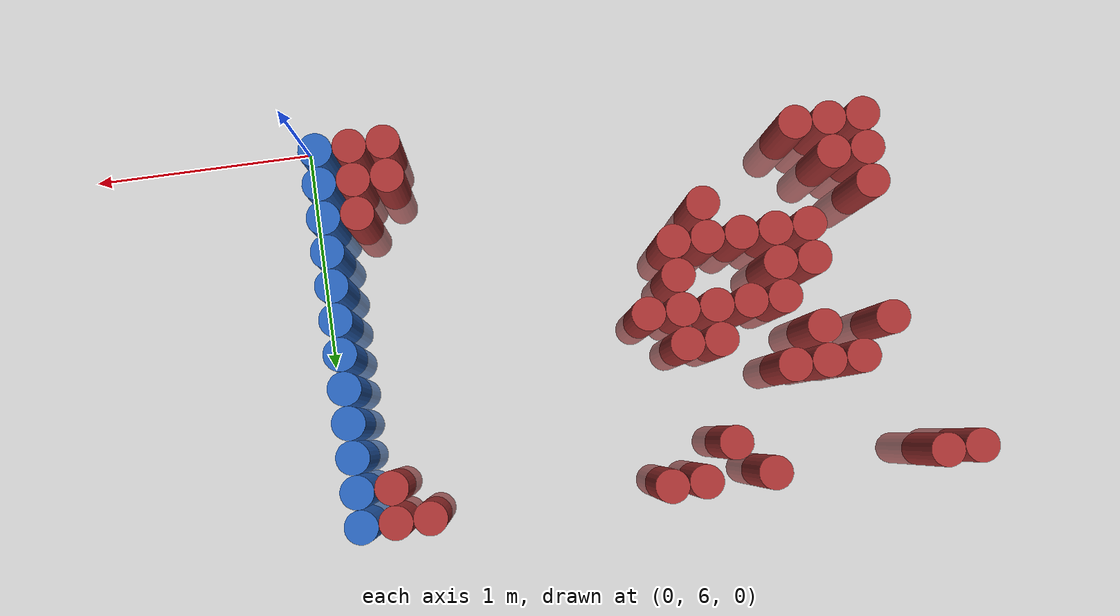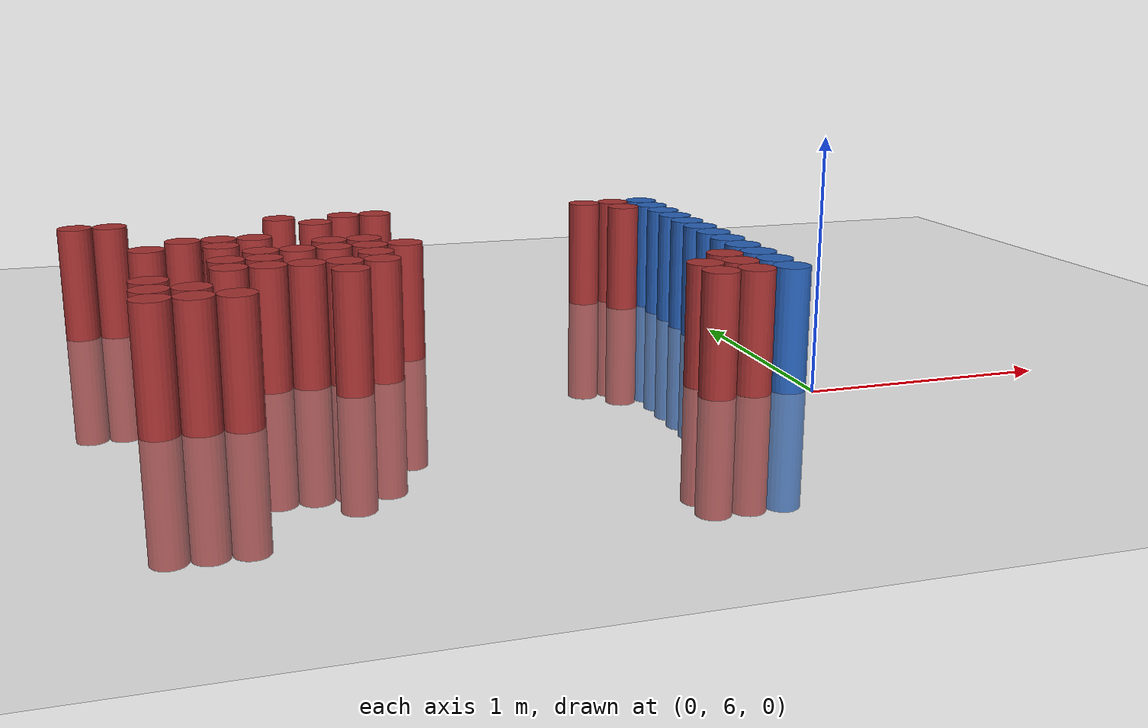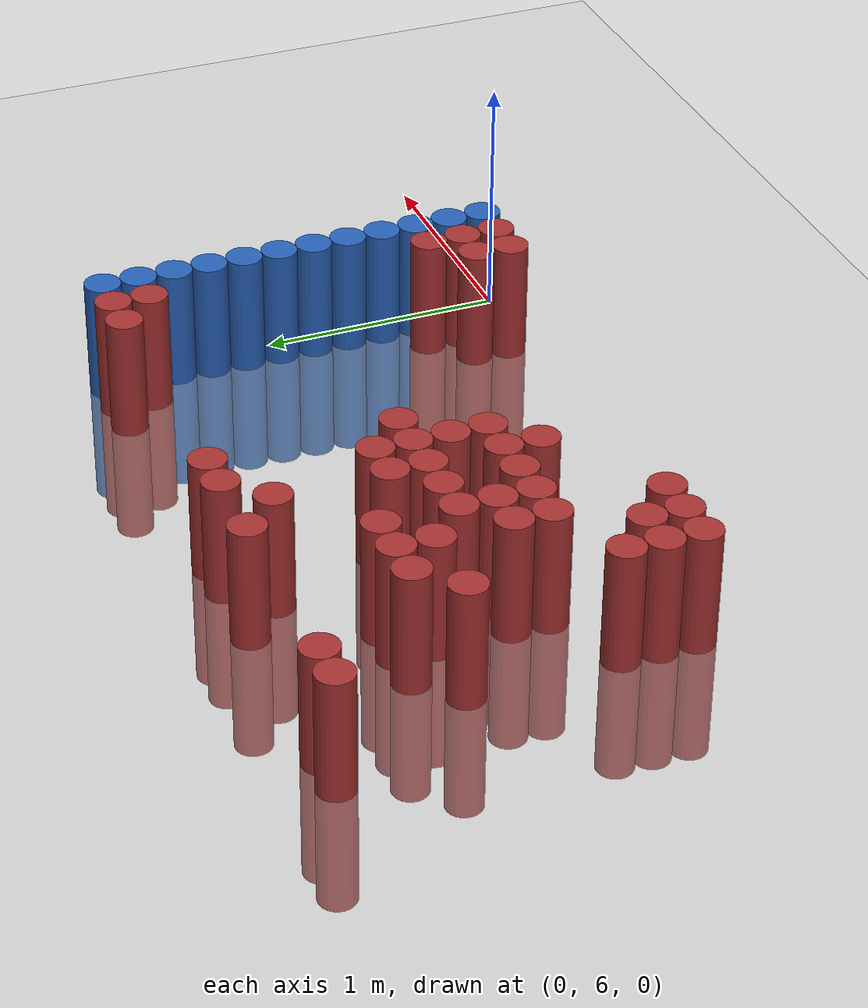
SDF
<sdf version="1.6">
 <world name="default">
  <model name="ground_plane">
   <static>1</static>
   <link name="link">
    <collision name="collision">
     <geometry><plane><normal>0 0 1</normal><size>100 100</size></plane></geometry>
     <surface><friction><ode><mu>100</mu><mu2>50</mu2></ode></friction></surface>
    </collision>
    <visual name="visual">
     <cast_shadows>0</cast_shadows>
     <geometry><plane><normal>0 0 1</normal><size>100 100</size></plane></geometry>
     <material>
      <script><uri>file://media/materials/scripts/gazebo.material</uri><name>Gazebo/Grey</name></script>
     </material>
    </visual>
   </link>
  </model>
  <model name="unit_cylinder_234">
   <static>1</static>
   <pose>-2.775000 7.725000 0.000000 0.000000 0.000000 0.000000</pose>
   <link name="link">
    <inertial>
     <mass>1</mass>
     <inertia><ixx>0.145833</ixx><ixy>0</ixy><ixz>0</ixz><iyy>0.145833</iyy><iyz>0</iyz><izz>0.125</izz></inertia>
    </inertial>
    <collision name="collision">
     <geometry><cylinder><radius>0.075000</radius><length>1</length></cylinder></geometry>
    </collision>
    <visual name="visual">
     <geometry><cylinder><radius>0.075000</radius><length>1</length></cylinder></geometry>
     <material>
      <ambient>0.648000 0.192000 0.192000 1</ambient>
      <diffuse>0.648000 0.192000 0.192000 1</diffuse>
     </material>
     <material>
      <script><name>Gazebo/Grey</name><uri>file://media/materials/scripts/gazebo.material</uri></script>
     </material>
    </visual>
   </link>
  </model>
  <model name="unit_cylinder_238">
   <static>1</static>
   <pose>-2.625000 7.725000 0.000000 0.000000 0.000000 0.000000</pose>
   <link name="link">
    <inertial>
     <mass>1</mass>
     <inertia><ixx>0.145833</ixx><ixy>0</ixy><ixz>0</ixz><iyy>0.145833</iyy><iyz>0</iyz><izz>0.125</izz></inertia>
    </inertial>
    <collision name="collision">
     <geometry><cylinder><radius>0.075000</radius><length>1</length></cylinder></geometry>
    </collision>
    <visual name="visual">
     <geometry><cylinder><radius>0.075000</radius><length>1</length></cylinder></geometry>
     <material>
      <ambient>0.648000 0.192000 0.192000 1</ambient>
      <diffuse>0.648000 0.192000 0.192000 1</diffuse>
     </material>
     <material>
      <script><name>Gazebo/Grey</name><uri>file://media/materials/scripts/gazebo.material</uri></script>
     </material>
    </visual>
   </link>
  </model>
  <model name="unit_cylinder_244">
   <static>1</static>
   <pose>-2.475000 6.225000 0.000000 0.000000 0.000000 0.000000</pose>
   <link name="link">
    <inertial>
     <mass>1</mass>
     <inertia><ixx>0.145833</ixx><ixy>0</ixy><ixz>0</ixz><iyy>0.145833</iyy><iyz>0</iyz><izz>0.125</izz></inertia>
    </inertial>
    <collision name="collision">
     <geometry><cylinder><radius>0.075000</radius><length>1</length></cylinder></geometry>
    </collision>
    <visual name="visual">
     <geometry><cylinder><radius>0.075000</radius><length>1</length></cylinder></geometry>
     <material>
      <ambient>0.648000 0.192000 0.192000 1</ambient>
      <diffuse>0.648000 0.192000 0.192000 1</diffuse>
     </material>
     <material>
      <script><name>Gazebo/Grey</name><uri>file://media/materials/scripts/gazebo.material</uri></script>
     </material>
    </visual>
   </link>
  </model>
  <model name="unit_cylinder_245">
   <static>1</static>
   <pose>-2.475000 6.375000 0.000000 0.000000 0.000000 0.000000</pose>
   <link name="link">
    <inertial>
     <mass>1</mass>
     <inertia><ixx>0.145833</ixx><ixy>0</ixy><ixz>0</ixz><iyy>0.145833</iyy><iyz>0</iyz><izz>0.125</izz></inertia>
    </inertial>
    <collision name="collision">
     <geometry><cylinder><radius>0.075000</radius><length>1</length></cylinder></geometry>
    </collision>
    <visual name="visual">
     <geometry><cylinder><radius>0.075000</radius><length>1</length></cylinder></geometry>
     <material>
      <ambient>0.648000 0.192000 0.192000 1</ambient>
      <diffuse>0.648000 0.192000 0.192000 1</diffuse>
     </material>
     <material>
      <script><name>Gazebo/Grey</name><uri>file://media/materials/scripts/gazebo.material</uri></script>
     </material>
    </visual>
   </link>
  </model>
  <model name="unit_cylinder_246">
   <static>1</static>
   <pose>-2.475000 6.525000 0.000000 0.000000 0.000000 0.000000</pose>
   <link name="link">
    <inertial>
     <mass>1</mass>
     <inertia><ixx>0.145833</ixx><ixy>0</ixy><ixz>0</ixz><iyy>0.145833</iyy><iyz>0</iyz><izz>0.125</izz></inertia>
    </inertial>
    <collision name="collision">
     <geometry><cylinder><radius>0.075000</radius><length>1</length></cylinder></geometry>
    </collision>
    <visual name="visual">
     <geometry><cylinder><radius>0.075000</radius><length>1</length></cylinder></geometry>
     <material>
      <ambient>0.648000 0.192000 0.192000 1</ambient>
      <diffuse>0.648000 0.192000 0.192000 1</diffuse>
     </material>
     <material>
      <script><name>Gazebo/Grey</name><uri>file://media/materials/scripts/gazebo.material</uri></script>
     </material>
    </visual>
   </link>
  </model>
  <model name="unit_cylinder_247">
   <static>1</static>
   <pose>-2.475000 7.125000 0.000000 0.000000 0.000000 0.000000</pose>
   <link name="link">
    <inertial>
     <mass>1</mass>
     <inertia><ixx>0.145833</ixx><ixy>0</ixy><ixz>0</ixz><iyy>0.145833</iyy><iyz>0</iyz><izz>0.125</izz></inertia>
    </inertial>
    <collision name="collision">
     <geometry><cylinder><radius>0.075000</radius><length>1</length></cylinder></geometry>
    </collision>
    <visual name="visual">
     <geometry><cylinder><radius>0.075000</radius><length>1</length></cylinder></geometry>
     <material>
      <ambient>0.648000 0.192000 0.192000 1</ambient>
      <diffuse>0.648000 0.192000 0.192000 1</diffuse>
     </material>
     <material>
      <script><name>Gazebo/Grey</name><uri>file://media/materials/scripts/gazebo.material</uri></script>
     </material>
    </visual>
   </link>
  </model>
  <model name="unit_cylinder_255">
   <static>1</static>
   <pose>-2.325000 6.225000 0.000000 0.000000 0.000000 0.000000</pose>
   <link name="link">
    <inertial>
     <mass>1</mass>
     <inertia><ixx>0.145833</ixx><ixy>0</ixy><ixz>0</ixz><iyy>0.145833</iyy><iyz>0</iyz><izz>0.125</izz></inertia>
    </inertial>
    <collision name="collision">
     <geometry><cylinder><radius>0.075000</radius><length>1</length></cylinder></geometry>
    </collision>
    <visual name="visual">
     <geometry><cylinder><radius>0.075000</radius><length>1</length></cylinder></geometry>
     <material>
      <ambient>0.648000 0.192000 0.192000 1</ambient>
      <diffuse>0.648000 0.192000 0.192000 1</diffuse>
     </material>
     <material>
      <script><name>Gazebo/Grey</name><uri>file://media/materials/scripts/gazebo.material</uri></script>
     </material>
    </visual>
   </link>
  </model>
  <model name="unit_cylinder_256">
   <static>1</static>
   <pose>-2.325000 6.375000 0.000000 0.000000 0.000000 0.000000</pose>
   <link name="link">
    <inertial>
     <mass>1</mass>
     <inertia><ixx>0.145833</ixx><ixy>0</ixy><ixz>0</ixz><iyy>0.145833</iyy><iyz>0</iyz><izz>0.125</izz></inertia>
    </inertial>
    <collision name="collision">
     <geometry><cylinder><radius>0.075000</radius><length>1</length></cylinder></geometry>
    </collision>
    <visual name="visual">
     <geometry><cylinder><radius>0.075000</radius><length>1</length></cylinder></geometry>
     <material>
      <ambient>0.648000 0.192000 0.192000 1</ambient>
      <diffuse>0.648000 0.192000 0.192000 1</diffuse>
     </material>
     <material>
      <script><name>Gazebo/Grey</name><uri>file://media/materials/scripts/gazebo.material</uri></script>
     </material>
    </visual>
   </link>
  </model>
  <model name="unit_cylinder_257">
   <static>1</static>
   <pose>-2.325000 7.275000 0.000000 0.000000 0.000000 0.000000</pose>
   <link name="link">
    <inertial>
     <mass>1</mass>
     <inertia><ixx>0.145833</ixx><ixy>0</ixy><ixz>0</ixz><iyy>0.145833</iyy><iyz>0</iyz><izz>0.125</izz></inertia>
    </inertial>
    <collision name="collision">
     <geometry><cylinder><radius>0.075000</radius><length>1</length></cylinder></geometry>
    </collision>
    <visual name="visual">
     <geometry><cylinder><radius>0.075000</radius><length>1</length></cylinder></geometry>
     <material>
      <ambient>0.648000 0.192000 0.192000 1</ambient>
      <diffuse>0.648000 0.192000 0.192000 1</diffuse>
     </material>
     <material>
      <script><name>Gazebo/Grey</name><uri>file://media/materials/scripts/gazebo.material</uri></script>
     </material>
    </visual>
   </link>
  </model>
  <model name="unit_cylinder_267">
   <static>1</static>
   <pose>-2.175000 6.225000 0.000000 0.000000 0.000000 0.000000</pose>
   <link name="link">
    <inertial>
     <mass>1</mass>
     <inertia><ixx>0.145833</ixx><ixy>0</ixy><ixz>0</ixz><iyy>0.145833</iyy><iyz>0</iyz><izz>0.125</izz></inertia>
    </inertial>
    <collision name="collision">
     <geometry><cylinder><radius>0.075000</radius><length>1</length></cylinder></geometry>
    </collision>
    <visual name="visual">
     <geometry><cylinder><radius>0.075000</radius><length>1</length></cylinder></geometry>
     <material>
      <ambient>0.648000 0.192000 0.192000 1</ambient>
      <diffuse>0.648000 0.192000 0.192000 1</diffuse>
     </material>
     <material>
      <script><name>Gazebo/Grey</name><uri>file://media/materials/scripts/gazebo.material</uri></script>
     </material>
    </visual>
   </link>
  </model>
  <model name="unit_cylinder_268">
   <static>1</static>
   <pose>-2.175000 6.675000 0.000000 0.000000 0.000000 0.000000</pose>
   <link name="link">
    <inertial>
     <mass>1</mass>
     <inertia><ixx>0.145833</ixx><ixy>0</ixy><ixz>0</ixz><iyy>0.145833</iyy><iyz>0</iyz><izz>0.125</izz></inertia>
    </inertial>
    <collision name="collision">
     <geometry><cylinder><radius>0.075000</radius><length>1</length></cylinder></geometry>
    </collision>
    <visual name="visual">
     <geometry><cylinder><radius>0.075000</radius><length>1</length></cylinder></geometry>
     <material>
      <ambient>0.648000 0.192000 0.192000 1</ambient>
      <diffuse>0.648000 0.192000 0.192000 1</diffuse>
     </material>
     <material>
      <script><name>Gazebo/Grey</name><uri>file://media/materials/scripts/gazebo.material</uri></script>
     </material>
    </visual>
   </link>
  </model>
  <model name="unit_cylinder_269">
   <static>1</static>
   <pose>-2.175000 6.825000 0.000000 0.000000 0.000000 0.000000</pose>
   <link name="link">
    <inertial>
     <mass>1</mass>
     <inertia><ixx>0.145833</ixx><ixy>0</ixy><ixz>0</ixz><iyy>0.145833</iyy><iyz>0</iyz><izz>0.125</izz></inertia>
    </inertial>
    <collision name="collision">
     <geometry><cylinder><radius>0.075000</radius><length>1</length></cylinder></geometry>
    </collision>
    <visual name="visual">
     <geometry><cylinder><radius>0.075000</radius><length>1</length></cylinder></geometry>
     <material>
      <ambient>0.648000 0.192000 0.192000 1</ambient>
      <diffuse>0.648000 0.192000 0.192000 1</diffuse>
     </material>
     <material>
      <script><name>Gazebo/Grey</name><uri>file://media/materials/scripts/gazebo.material</uri></script>
     </material>
    </visual>
   </link>
  </model>
  <model name="unit_cylinder_270">
   <static>1</static>
   <pose>-2.175000 7.125000 0.000000 0.000000 0.000000 0.000000</pose>
   <link name="link">
    <inertial>
     <mass>1</mass>
     <inertia><ixx>0.145833</ixx><ixy>0</ixy><ixz>0</ixz><iyy>0.145833</iyy><iyz>0</iyz><izz>0.125</izz></inertia>
    </inertial>
    <collision name="collision">
     <geometry><cylinder><radius>0.075000</radius><length>1</length></cylinder></geometry>
    </collision>
    <visual name="visual">
     <geometry><cylinder><radius>0.075000</radius><length>1</length></cylinder></geometry>
     <material>
      <ambient>0.648000 0.192000 0.192000 1</ambient>
      <diffuse>0.648000 0.192000 0.192000 1</diffuse>
     </material>
     <material>
      <script><name>Gazebo/Grey</name><uri>file://media/materials/scripts/gazebo.material</uri></script>
     </material>
    </visual>
   </link>
  </model>
  <model name="unit_cylinder_271">
   <static>1</static>
   <pose>-2.175000 7.275000 0.000000 0.000000 0.000000 0.000000</pose>
   <link name="link">
    <inertial>
     <mass>1</mass>
     <inertia><ixx>0.145833</ixx><ixy>0</ixy><ixz>0</ixz><iyy>0.145833</iyy><iyz>0</iyz><izz>0.125</izz></inertia>
    </inertial>
    <collision name="collision">
     <geometry><cylinder><radius>0.075000</radius><length>1</length></cylinder></geometry>
    </collision>
    <visual name="visual">
     <geometry><cylinder><radius>0.075000</radius><length>1</length></cylinder></geometry>
     <material>
      <ambient>0.648000 0.192000 0.192000 1</ambient>
      <diffuse>0.648000 0.192000 0.192000 1</diffuse>
     </material>
     <material>
      <script><name>Gazebo/Grey</name><uri>file://media/materials/scripts/gazebo.material</uri></script>
     </material>
    </visual>
   </link>
  </model>
  <model name="unit_cylinder_278">
   <static>1</static>
   <pose>-2.025000 6.675000 0.000000 0.000000 0.000000 0.000000</pose>
   <link name="link">
    <inertial>
     <mass>1</mass>
     <inertia><ixx>0.145833</ixx><ixy>0</ixy><ixz>0</ixz><iyy>0.145833</iyy><iyz>0</iyz><izz>0.125</izz></inertia>
    </inertial>
    <collision name="collision">
     <geometry><cylinder><radius>0.075000</radius><length>1</length></cylinder></geometry>
    </collision>
    <visual name="visual">
     <geometry><cylinder><radius>0.075000</radius><length>1</length></cylinder></geometry>
     <material>
      <ambient>0.648000 0.192000 0.192000 1</ambient>
      <diffuse>0.648000 0.192000 0.192000 1</diffuse>
     </material>
     <material>
      <script><name>Gazebo/Grey</name><uri>file://media/materials/scripts/gazebo.material</uri></script>
     </material>
    </visual>
   </link>
  </model>
  <model name="unit_cylinder_279">
   <static>1</static>
   <pose>-2.025000 6.825000 0.000000 0.000000 0.000000 0.000000</pose>
   <link name="link">
    <inertial>
     <mass>1</mass>
     <inertia><ixx>0.145833</ixx><ixy>0</ixy><ixz>0</ixz><iyy>0.145833</iyy><iyz>0</iyz><izz>0.125</izz></inertia>
    </inertial>
    <collision name="collision">
     <geometry><cylinder><radius>0.075000</radius><length>1</length></cylinder></geometry>
    </collision>
    <visual name="visual">
     <geometry><cylinder><radius>0.075000</radius><length>1</length></cylinder></geometry>
     <material>
      <ambient>0.648000 0.192000 0.192000 1</ambient>
      <diffuse>0.648000 0.192000 0.192000 1</diffuse>
     </material>
     <material>
      <script><name>Gazebo/Grey</name><uri>file://media/materials/scripts/gazebo.material</uri></script>
     </material>
    </visual>
   </link>
  </model>
  <model name="unit_cylinder_280">
   <static>1</static>
   <pose>-2.025000 6.975000 0.000000 0.000000 0.000000 0.000000</pose>
   <link name="link">
    <inertial>
     <mass>1</mass>
     <inertia><ixx>0.145833</ixx><ixy>0</ixy><ixz>0</ixz><iyy>0.145833</iyy><iyz>0</iyz><izz>0.125</izz></inertia>
    </inertial>
    <collision name="collision">
     <geometry><cylinder><radius>0.075000</radius><length>1</length></cylinder></geometry>
    </collision>
    <visual name="visual">
     <geometry><cylinder><radius>0.075000</radius><length>1</length></cylinder></geometry>
     <material>
      <ambient>0.648000 0.192000 0.192000 1</ambient>
      <diffuse>0.648000 0.192000 0.192000 1</diffuse>
     </material>
     <material>
      <script><name>Gazebo/Grey</name><uri>file://media/materials/scripts/gazebo.material</uri></script>
     </material>
    </visual>
   </link>
  </model>
  <model name="unit_cylinder_281">
   <static>1</static>
   <pose>-2.025000 7.275000 0.000000 0.000000 0.000000 0.000000</pose>
   <link name="link">
    <inertial>
     <mass>1</mass>
     <inertia><ixx>0.145833</ixx><ixy>0</ixy><ixz>0</ixz><iyy>0.145833</iyy><iyz>0</iyz><izz>0.125</izz></inertia>
    </inertial>
    <collision name="collision">
     <geometry><cylinder><radius>0.075000</radius><length>1</length></cylinder></geometry>
    </collision>
    <visual name="visual">
     <geometry><cylinder><radius>0.075000</radius><length>1</length></cylinder></geometry>
     <material>
      <ambient>0.648000 0.192000 0.192000 1</ambient>
      <diffuse>0.648000 0.192000 0.192000 1</diffuse>
     </material>
     <material>
      <script><name>Gazebo/Grey</name><uri>file://media/materials/scripts/gazebo.material</uri></script>
     </material>
    </visual>
   </link>
  </model>
  <model name="unit_cylinder_287">
   <static>1</static>
   <pose>-1.875000 6.675000 0.000000 0.000000 0.000000 0.000000</pose>
   <link name="link">
    <inertial>
     <mass>1</mass>
     <inertia><ixx>0.145833</ixx><ixy>0</ixy><ixz>0</ixz><iyy>0.145833</iyy><iyz>0</iyz><izz>0.125</izz></inertia>
    </inertial>
    <collision name="collision">
     <geometry><cylinder><radius>0.075000</radius><length>1</length></cylinder></geometry>
    </collision>
    <visual name="visual">
     <geometry><cylinder><radius>0.075000</radius><length>1</length></cylinder></geometry>
     <material>
      <ambient>0.648000 0.192000 0.192000 1</ambient>
      <diffuse>0.648000 0.192000 0.192000 1</diffuse>
     </material>
     <material>
      <script><name>Gazebo/Grey</name><uri>file://media/materials/scripts/gazebo.material</uri></script>
     </material>
    </visual>
   </link>
  </model>
  <model name="unit_cylinder_288">
   <static>1</static>
   <pose>-1.875000 6.975000 0.000000 0.000000 0.000000 0.000000</pose>
   <link name="link">
    <inertial>
     <mass>1</mass>
     <inertia><ixx>0.145833</ixx><ixy>0</ixy><ixz>0</ixz><iyy>0.145833</iyy><iyz>0</iyz><izz>0.125</izz></inertia>
    </inertial>
    <collision name="collision">
     <geometry><cylinder><radius>0.075000</radius><length>1</length></cylinder></geometry>
    </collision>
    <visual name="visual">
     <geometry><cylinder><radius>0.075000</radius><length>1</length></cylinder></geometry>
     <material>
      <ambient>0.648000 0.192000 0.192000 1</ambient>
      <diffuse>0.648000 0.192000 0.192000 1</diffuse>
     </material>
     <material>
      <script><name>Gazebo/Grey</name><uri>file://media/materials/scripts/gazebo.material</uri></script>
     </material>
    </visual>
   </link>
  </model>
  <model name="unit_cylinder_289">
   <static>1</static>
   <pose>-1.875000 7.725000 0.000000 0.000000 0.000000 0.000000</pose>
   <link name="link">
    <inertial>
     <mass>1</mass>
     <inertia><ixx>0.145833</ixx><ixy>0</ixy><ixz>0</ixz><iyy>0.145833</iyy><iyz>0</iyz><izz>0.125</izz></inertia>
    </inertial>
    <collision name="collision">
     <geometry><cylinder><radius>0.075000</radius><length>1</length></cylinder></geometry>
    </collision>
    <visual name="visual">
     <geometry><cylinder><radius>0.075000</radius><length>1</length></cylinder></geometry>
     <material>
      <ambient>0.648000 0.192000 0.192000 1</ambient>
      <diffuse>0.648000 0.192000 0.192000 1</diffuse>
     </material>
     <material>
      <script><name>Gazebo/Grey</name><uri>file://media/materials/scripts/gazebo.material</uri></script>
     </material>
    </visual>
   </link>
  </model>
  <model name="unit_cylinder_295">
   <static>1</static>
   <pose>-1.725000 6.525000 0.000000 0.000000 0.000000 0.000000</pose>
   <link name="link">
    <inertial>
     <mass>1</mass>
     <inertia><ixx>0.145833</ixx><ixy>0</ixy><ixz>0</ixz><iyy>0.145833</iyy><iyz>0</iyz><izz>0.125</izz></inertia>
    </inertial>
    <collision name="collision">
     <geometry><cylinder><radius>0.075000</radius><length>1</length></cylinder></geometry>
    </collision>
    <visual name="visual">
     <geometry><cylinder><radius>0.075000</radius><length>1</length></cylinder></geometry>
     <material>
      <ambient>0.648000 0.192000 0.192000 1</ambient>
      <diffuse>0.648000 0.192000 0.192000 1</diffuse>
     </material>
     <material>
      <script><name>Gazebo/Grey</name><uri>file://media/materials/scripts/gazebo.material</uri></script>
     </material>
    </visual>
   </link>
  </model>
  <model name="unit_cylinder_296">
   <static>1</static>
   <pose>-1.725000 6.675000 0.000000 0.000000 0.000000 0.000000</pose>
   <link name="link">
    <inertial>
     <mass>1</mass>
     <inertia><ixx>0.145833</ixx><ixy>0</ixy><ixz>0</ixz><iyy>0.145833</iyy><iyz>0</iyz><izz>0.125</izz></inertia>
    </inertial>
    <collision name="collision">
     <geometry><cylinder><radius>0.075000</radius><length>1</length></cylinder></geometry>
    </collision>
    <visual name="visual">
     <geometry><cylinder><radius>0.075000</radius><length>1</length></cylinder></geometry>
     <material>
      <ambient>0.648000 0.192000 0.192000 1</ambient>
      <diffuse>0.648000 0.192000 0.192000 1</diffuse>
     </material>
     <material>
      <script><name>Gazebo/Grey</name><uri>file://media/materials/scripts/gazebo.material</uri></script>
     </material>
    </visual>
   </link>
  </model>
  <model name="unit_cylinder_297">
   <static>1</static>
   <pose>-1.725000 6.975000 0.000000 0.000000 0.000000 0.000000</pose>
   <link name="link">
    <inertial>
     <mass>1</mass>
     <inertia><ixx>0.145833</ixx><ixy>0</ixy><ixz>0</ixz><iyy>0.145833</iyy><iyz>0</iyz><izz>0.125</izz></inertia>
    </inertial>
    <collision name="collision">
     <geometry><cylinder><radius>0.075000</radius><length>1</length></cylinder></geometry>
    </collision>
    <visual name="visual">
     <geometry><cylinder><radius>0.075000</radius><length>1</length></cylinder></geometry>
     <material>
      <ambient>0.648000 0.192000 0.192000 1</ambient>
      <diffuse>0.648000 0.192000 0.192000 1</diffuse>
     </material>
     <material>
      <script><name>Gazebo/Grey</name><uri>file://media/materials/scripts/gazebo.material</uri></script>
     </material>
    </visual>
   </link>
  </model>
  <model name="unit_cylinder_298">
   <static>1</static>
   <pose>-1.725000 7.125000 0.000000 0.000000 0.000000 0.000000</pose>
   <link name="link">
    <inertial>
     <mass>1</mass>
     <inertia><ixx>0.145833</ixx><ixy>0</ixy><ixz>0</ixz><iyy>0.145833</iyy><iyz>0</iyz><izz>0.125</izz></inertia>
    </inertial>
    <collision name="collision">
     <geometry><cylinder><radius>0.075000</radius><length>1</length></cylinder></geometry>
    </collision>
    <visual name="visual">
     <geometry><cylinder><radius>0.075000</radius><length>1</length></cylinder></geometry>
     <material>
      <ambient>0.648000 0.192000 0.192000 1</ambient>
      <diffuse>0.648000 0.192000 0.192000 1</diffuse>
     </material>
     <material>
      <script><name>Gazebo/Grey</name><uri>file://media/materials/scripts/gazebo.material</uri></script>
     </material>
    </visual>
   </link>
  </model>
  <model name="unit_cylinder_299">
   <static>1</static>
   <pose>-1.725000 7.575000 0.000000 0.000000 0.000000 0.000000</pose>
   <link name="link">
    <inertial>
     <mass>1</mass>
     <inertia><ixx>0.145833</ixx><ixy>0</ixy><ixz>0</ixz><iyy>0.145833</iyy><iyz>0</iyz><izz>0.125</izz></inertia>
    </inertial>
    <collision name="collision">
     <geometry><cylinder><radius>0.075000</radius><length>1</length></cylinder></geometry>
    </collision>
    <visual name="visual">
     <geometry><cylinder><radius>0.075000</radius><length>1</length></cylinder></geometry>
     <material>
      <ambient>0.648000 0.192000 0.192000 1</ambient>
      <diffuse>0.648000 0.192000 0.192000 1</diffuse>
     </material>
     <material>
      <script><name>Gazebo/Grey</name><uri>file://media/materials/scripts/gazebo.material</uri></script>
     </material>
    </visual>
   </link>
  </model>
  <model name="unit_cylinder_303">
   <static>1</static>
   <pose>-1.575000 6.675000 0.000000 0.000000 0.000000 0.000000</pose>
   <link name="link">
    <inertial>
     <mass>1</mass>
     <inertia><ixx>0.145833</ixx><ixy>0</ixy><ixz>0</ixz><iyy>0.145833</iyy><iyz>0</iyz><izz>0.125</izz></inertia>
    </inertial>
    <collision name="collision">
     <geometry><cylinder><radius>0.075000</radius><length>1</length></cylinder></geometry>
    </collision>
    <visual name="visual">
     <geometry><cylinder><radius>0.075000</radius><length>1</length></cylinder></geometry>
     <material>
      <ambient>0.648000 0.192000 0.192000 1</ambient>
      <diffuse>0.648000 0.192000 0.192000 1</diffuse>
     </material>
     <material>
      <script><name>Gazebo/Grey</name><uri>file://media/materials/scripts/gazebo.material</uri></script>
     </material>
    </visual>
   </link>
  </model>
  <model name="unit_cylinder_304">
   <static>1</static>
   <pose>-1.575000 6.825000 0.000000 0.000000 0.000000 0.000000</pose>
   <link name="link">
    <inertial>
     <mass>1</mass>
     <inertia><ixx>0.145833</ixx><ixy>0</ixy><ixz>0</ixz><iyy>0.145833</iyy><iyz>0</iyz><izz>0.125</izz></inertia>
    </inertial>
    <collision name="collision">
     <geometry><cylinder><radius>0.075000</radius><length>1</length></cylinder></geometry>
    </collision>
    <visual name="visual">
     <geometry><cylinder><radius>0.075000</radius><length>1</length></cylinder></geometry>
     <material>
      <ambient>0.648000 0.192000 0.192000 1</ambient>
      <diffuse>0.648000 0.192000 0.192000 1</diffuse>
     </material>
     <material>
      <script><name>Gazebo/Grey</name><uri>file://media/materials/scripts/gazebo.material</uri></script>
     </material>
    </visual>
   </link>
  </model>
  <model name="unit_cylinder_305">
   <static>1</static>
   <pose>-1.575000 6.975000 0.000000 0.000000 0.000000 0.000000</pose>
   <link name="link">
    <inertial>
     <mass>1</mass>
     <inertia><ixx>0.145833</ixx><ixy>0</ixy><ixz>0</ixz><iyy>0.145833</iyy><iyz>0</iyz><izz>0.125</izz></inertia>
    </inertial>
    <collision name="collision">
     <geometry><cylinder><radius>0.075000</radius><length>1</length></cylinder></geometry>
    </collision>
    <visual name="visual">
     <geometry><cylinder><radius>0.075000</radius><length>1</length></cylinder></geometry>
     <material>
      <ambient>0.648000 0.192000 0.192000 1</ambient>
      <diffuse>0.648000 0.192000 0.192000 1</diffuse>
     </material>
     <material>
      <script><name>Gazebo/Grey</name><uri>file://media/materials/scripts/gazebo.material</uri></script>
     </material>
    </visual>
   </link>
  </model>
  <model name="unit_cylinder_306">
   <static>1</static>
   <pose>-1.575000 7.125000 0.000000 0.000000 0.000000 0.000000</pose>
   <link name="link">
    <inertial>
     <mass>1</mass>
     <inertia><ixx>0.145833</ixx><ixy>0</ixy><ixz>0</ixz><iyy>0.145833</iyy><iyz>0</iyz><izz>0.125</izz></inertia>
    </inertial>
    <collision name="collision">
     <geometry><cylinder><radius>0.075000</radius><length>1</length></cylinder></geometry>
    </collision>
    <visual name="visual">
     <geometry><cylinder><radius>0.075000</radius><length>1</length></cylinder></geometry>
     <material>
      <ambient>0.648000 0.192000 0.192000 1</ambient>
      <diffuse>0.648000 0.192000 0.192000 1</diffuse>
     </material>
     <material>
      <script><name>Gazebo/Grey</name><uri>file://media/materials/scripts/gazebo.material</uri></script>
     </material>
    </visual>
   </link>
  </model>
  <model name="unit_cylinder_307">
   <static>1</static>
   <pose>-1.575000 7.725000 0.000000 0.000000 0.000000 0.000000</pose>
   <link name="link">
    <inertial>
     <mass>1</mass>
     <inertia><ixx>0.145833</ixx><ixy>0</ixy><ixz>0</ixz><iyy>0.145833</iyy><iyz>0</iyz><izz>0.125</izz></inertia>
    </inertial>
    <collision name="collision">
     <geometry><cylinder><radius>0.075000</radius><length>1</length></cylinder></geometry>
    </collision>
    <visual name="visual">
     <geometry><cylinder><radius>0.075000</radius><length>1</length></cylinder></geometry>
     <material>
      <ambient>0.648000 0.192000 0.192000 1</ambient>
      <diffuse>0.648000 0.192000 0.192000 1</diffuse>
     </material>
     <material>
      <script><name>Gazebo/Grey</name><uri>file://media/materials/scripts/gazebo.material</uri></script>
     </material>
    </visual>
   </link>
  </model>
  <model name="unit_cylinder_308">
   <static>1</static>
   <pose>-1.425000 6.975000 0.000000 0.000000 0.000000 0.000000</pose>
   <link name="link">
    <inertial>
     <mass>1</mass>
     <inertia><ixx>0.145833</ixx><ixy>0</ixy><ixz>0</ixz><iyy>0.145833</iyy><iyz>0</iyz><izz>0.125</izz></inertia>
    </inertial>
    <collision name="collision">
     <geometry><cylinder><radius>0.075000</radius><length>1</length></cylinder></geometry>
    </collision>
    <visual name="visual">
     <geometry><cylinder><radius>0.075000</radius><length>1</length></cylinder></geometry>
     <material>
      <ambient>0.648000 0.192000 0.192000 1</ambient>
      <diffuse>0.648000 0.192000 0.192000 1</diffuse>
     </material>
     <material>
      <script><name>Gazebo/Grey</name><uri>file://media/materials/scripts/gazebo.material</uri></script>
     </material>
    </visual>
   </link>
  </model>
  <model name="unit_cylinder_309">
   <static>1</static>
   <pose>-1.425000 7.725000 0.000000 0.000000 0.000000 0.000000</pose>
   <link name="link">
    <inertial>
     <mass>1</mass>
     <inertia><ixx>0.145833</ixx><ixy>0</ixy><ixz>0</ixz><iyy>0.145833</iyy><iyz>0</iyz><izz>0.125</izz></inertia>
    </inertial>
    <collision name="collision">
     <geometry><cylinder><radius>0.075000</radius><length>1</length></cylinder></geometry>
    </collision>
    <visual name="visual">
     <geometry><cylinder><radius>0.075000</radius><length>1</length></cylinder></geometry>
     <material>
      <ambient>0.648000 0.192000 0.192000 1</ambient>
      <diffuse>0.648000 0.192000 0.192000 1</diffuse>
     </material>
     <material>
      <script><name>Gazebo/Grey</name><uri>file://media/materials/scripts/gazebo.material</uri></script>
     </material>
    </visual>
   </link>
  </model>
  <model name="unit_cylinder_315">
   <static>1</static>
   <pose>-0.375000 6.075000 0.000000 0.000000 0.000000 0.000000</pose>
   <link name="link">
    <inertial>
     <mass>1</mass>
     <inertia><ixx>0.145833</ixx><ixy>0</ixy><ixz>0</ixz><iyy>0.145833</iyy><iyz>0</iyz><izz>0.125</izz></inertia>
    </inertial>
    <collision name="collision">
     <geometry><cylinder><radius>0.075000</radius><length>1</length></cylinder></geometry>
    </collision>
    <visual name="visual">
     <geometry><cylinder><radius>0.075000</radius><length>1</length></cylinder></geometry>
     <material>
      <ambient>0.648000 0.192000 0.192000 1</ambient>
      <diffuse>0.648000 0.192000 0.192000 1</diffuse>
     </material>
     <material>
      <script><name>Gazebo/Grey</name><uri>file://media/materials/scripts/gazebo.material</uri></script>
     </material>
    </visual>
   </link>
  </model>
  <model name="unit_cylinder_316">
   <static>1</static>
   <pose>-0.375000 6.225000 0.000000 0.000000 0.000000 0.000000</pose>
   <link name="link">
    <inertial>
     <mass>1</mass>
     <inertia><ixx>0.145833</ixx><ixy>0</ixy><ixz>0</ixz><iyy>0.145833</iyy><iyz>0</iyz><izz>0.125</izz></inertia>
    </inertial>
    <collision name="collision">
     <geometry><cylinder><radius>0.075000</radius><length>1</length></cylinder></geometry>
    </collision>
    <visual name="visual">
     <geometry><cylinder><radius>0.075000</radius><length>1</length></cylinder></geometry>
     <material>
      <ambient>0.648000 0.192000 0.192000 1</ambient>
      <diffuse>0.648000 0.192000 0.192000 1</diffuse>
     </material>
     <material>
      <script><name>Gazebo/Grey</name><uri>file://media/materials/scripts/gazebo.material</uri></script>
     </material>
    </visual>
   </link>
  </model>
  <model name="unit_cylinder_317">
   <static>1</static>
   <pose>-0.375000 7.725000 0.000000 0.000000 0.000000 0.000000</pose>
   <link name="link">
    <inertial>
     <mass>1</mass>
     <inertia><ixx>0.145833</ixx><ixy>0</ixy><ixz>0</ixz><iyy>0.145833</iyy><iyz>0</iyz><izz>0.125</izz></inertia>
    </inertial>
    <collision name="collision">
     <geometry><cylinder><radius>0.075000</radius><length>1</length></cylinder></geometry>
    </collision>
    <visual name="visual">
     <geometry><cylinder><radius>0.075000</radius><length>1</length></cylinder></geometry>
     <material>
      <ambient>0.648000 0.192000 0.192000 1</ambient>
      <diffuse>0.648000 0.192000 0.192000 1</diffuse>
     </material>
     <material>
      <script><name>Gazebo/Grey</name><uri>file://media/materials/scripts/gazebo.material</uri></script>
     </material>
    </visual>
   </link>
  </model>
  <model name="unit_cylinder_323">
   <static>1</static>
   <pose>-0.225000 6.075000 0.000000 0.000000 0.000000 0.000000</pose>
   <link name="link">
    <inertial>
     <mass>1</mass>
     <inertia><ixx>0.145833</ixx><ixy>0</ixy><ixz>0</ixz><iyy>0.145833</iyy><iyz>0</iyz><izz>0.125</izz></inertia>
    </inertial>
    <collision name="collision">
     <geometry><cylinder><radius>0.075000</radius><length>1</length></cylinder></geometry>
    </collision>
    <visual name="visual">
     <geometry><cylinder><radius>0.075000</radius><length>1</length></cylinder></geometry>
     <material>
      <ambient>0.648000 0.192000 0.192000 1</ambient>
      <diffuse>0.648000 0.192000 0.192000 1</diffuse>
     </material>
     <material>
      <script><name>Gazebo/Grey</name><uri>file://media/materials/scripts/gazebo.material</uri></script>
     </material>
    </visual>
   </link>
  </model>
  <model name="unit_cylinder_324">
   <static>1</static>
   <pose>-0.225000 6.225000 0.000000 0.000000 0.000000 0.000000</pose>
   <link name="link">
    <inertial>
     <mass>1</mass>
     <inertia><ixx>0.145833</ixx><ixy>0</ixy><ixz>0</ixz><iyy>0.145833</iyy><iyz>0</iyz><izz>0.125</izz></inertia>
    </inertial>
    <collision name="collision">
     <geometry><cylinder><radius>0.075000</radius><length>1</length></cylinder></geometry>
    </collision>
    <visual name="visual">
     <geometry><cylinder><radius>0.075000</radius><length>1</length></cylinder></geometry>
     <material>
      <ambient>0.648000 0.192000 0.192000 1</ambient>
      <diffuse>0.648000 0.192000 0.192000 1</diffuse>
     </material>
     <material>
      <script><name>Gazebo/Grey</name><uri>file://media/materials/scripts/gazebo.material</uri></script>
     </material>
    </visual>
   </link>
  </model>
  <model name="unit_cylinder_325">
   <static>1</static>
   <pose>-0.225000 6.375000 0.000000 0.000000 0.000000 0.000000</pose>
   <link name="link">
    <inertial>
     <mass>1</mass>
     <inertia><ixx>0.145833</ixx><ixy>0</ixy><ixz>0</ixz><iyy>0.145833</iyy><iyz>0</iyz><izz>0.125</izz></inertia>
    </inertial>
    <collision name="collision">
     <geometry><cylinder><radius>0.075000</radius><length>1</length></cylinder></geometry>
    </collision>
    <visual name="visual">
     <geometry><cylinder><radius>0.075000</radius><length>1</length></cylinder></geometry>
     <material>
      <ambient>0.648000 0.192000 0.192000 1</ambient>
      <diffuse>0.648000 0.192000 0.192000 1</diffuse>
     </material>
     <material>
      <script><name>Gazebo/Grey</name><uri>file://media/materials/scripts/gazebo.material</uri></script>
     </material>
    </visual>
   </link>
  </model>
  <model name="unit_cylinder_326">
   <static>1</static>
   <pose>-0.225000 7.575000 0.000000 0.000000 0.000000 0.000000</pose>
   <link name="link">
    <inertial>
     <mass>1</mass>
     <inertia><ixx>0.145833</ixx><ixy>0</ixy><ixz>0</ixz><iyy>0.145833</iyy><iyz>0</iyz><izz>0.125</izz></inertia>
    </inertial>
    <collision name="collision">
     <geometry><cylinder><radius>0.075000</radius><length>1</length></cylinder></geometry>
    </collision>
    <visual name="visual">
     <geometry><cylinder><radius>0.075000</radius><length>1</length></cylinder></geometry>
     <material>
      <ambient>0.648000 0.192000 0.192000 1</ambient>
      <diffuse>0.648000 0.192000 0.192000 1</diffuse>
     </material>
     <material>
      <script><name>Gazebo/Grey</name><uri>file://media/materials/scripts/gazebo.material</uri></script>
     </material>
    </visual>
   </link>
  </model>
  <model name="unit_cylinder_327">
   <static>1</static>
   <pose>-0.225000 7.725000 0.000000 0.000000 0.000000 0.000000</pose>
   <link name="link">
    <inertial>
     <mass>1</mass>
     <inertia><ixx>0.145833</ixx><ixy>0</ixy><ixz>0</ixz><iyy>0.145833</iyy><iyz>0</iyz><izz>0.125</izz></inertia>
    </inertial>
    <collision name="collision">
     <geometry><cylinder><radius>0.075000</radius><length>1</length></cylinder></geometry>
    </collision>
    <visual name="visual">
     <geometry><cylinder><radius>0.075000</radius><length>1</length></cylinder></geometry>
     <material>
      <ambient>0.648000 0.192000 0.192000 1</ambient>
      <diffuse>0.648000 0.192000 0.192000 1</diffuse>
     </material>
     <material>
      <script><name>Gazebo/Grey</name><uri>file://media/materials/scripts/gazebo.material</uri></script>
     </material>
    </visual>
   </link>
  </model>
  <model name="unit_cylinder_345">
   <static>1</static>
   <pose>-0.075000 6.075000 0.000000 0.000000 0.000000 0.000000</pose>
   <link name="link">
    <inertial>
     <mass>1</mass>
     <inertia><ixx>0.145833</ixx><ixy>0</ixy><ixz>0</ixz><iyy>0.145833</iyy><iyz>0</iyz><izz>0.125</izz></inertia>
    </inertial>
    <collision name="collision">
     <geometry><cylinder><radius>0.075000</radius><length>1</length></cylinder></geometry>
    </collision>
    <visual name="visual">
     <geometry><cylinder><radius>0.075000</radius><length>1</length></cylinder></geometry>
     <material>
      <ambient>0.152000 0.379000 0.720000 1</ambient>
      <diffuse>0.152000 0.379000 0.720000 1</diffuse>
     </material>
     <material>
      <script><name>Gazebo/Grey</name><uri>file://media/materials/scripts/gazebo.material</uri></script>
     </material>
    </visual>
   </link>
  </model>
  <model name="unit_cylinder_346">
   <static>1</static>
   <pose>-0.075000 6.225000 0.000000 0.000000 0.000000 0.000000</pose>
   <link name="link">
    <inertial>
     <mass>1</mass>
     <inertia><ixx>0.145833</ixx><ixy>0</ixy><ixz>0</ixz><iyy>0.145833</iyy><iyz>0</iyz><izz>0.125</izz></inertia>
    </inertial>
    <collision name="collision">
     <geometry><cylinder><radius>0.075000</radius><length>1</length></cylinder></geometry>
    </collision>
    <visual name="visual">
     <geometry><cylinder><radius>0.075000</radius><length>1</length></cylinder></geometry>
     <material>
      <ambient>0.152000 0.379000 0.720000 1</ambient>
      <diffuse>0.152000 0.379000 0.720000 1</diffuse>
     </material>
     <material>
      <script><name>Gazebo/Grey</name><uri>file://media/materials/scripts/gazebo.material</uri></script>
     </material>
    </visual>
   </link>
  </model>
  <model name="unit_cylinder_347">
   <static>1</static>
   <pose>-0.075000 6.375000 0.000000 0.000000 0.000000 0.000000</pose>
   <link name="link">
    <inertial>
     <mass>1</mass>
     <inertia><ixx>0.145833</ixx><ixy>0</ixy><ixz>0</ixz><iyy>0.145833</iyy><iyz>0</iyz><izz>0.125</izz></inertia>
    </inertial>
    <collision name="collision">
     <geometry><cylinder><radius>0.075000</radius><length>1</length></cylinder></geometry>
    </collision>
    <visual name="visual">
     <geometry><cylinder><radius>0.075000</radius><length>1</length></cylinder></geometry>
     <material>
      <ambient>0.152000 0.379000 0.720000 1</ambient>
      <diffuse>0.152000 0.379000 0.720000 1</diffuse>
     </material>
     <material>
      <script><name>Gazebo/Grey</name><uri>file://media/materials/scripts/gazebo.material</uri></script>
     </material>
    </visual>
   </link>
  </model>
  <model name="unit_cylinder_348">
   <static>1</static>
   <pose>-0.075000 6.525000 0.000000 0.000000 0.000000 0.000000</pose>
   <link name="link">
    <inertial>
     <mass>1</mass>
     <inertia><ixx>0.145833</ixx><ixy>0</ixy><ixz>0</ixz><iyy>0.145833</iyy><iyz>0</iyz><izz>0.125</izz></inertia>
    </inertial>
    <collision name="collision">
     <geometry><cylinder><radius>0.075000</radius><length>1</length></cylinder></geometry>
    </collision>
    <visual name="visual">
     <geometry><cylinder><radius>0.075000</radius><length>1</length></cylinder></geometry>
     <material>
      <ambient>0.152000 0.379000 0.720000 1</ambient>
      <diffuse>0.152000 0.379000 0.720000 1</diffuse>
     </material>
     <material>
      <script><name>Gazebo/Grey</name><uri>file://media/materials/scripts/gazebo.material</uri></script>
     </material>
    </visual>
   </link>
  </model>
  <model name="unit_cylinder_349">
   <static>1</static>
   <pose>-0.075000 6.675000 0.000000 0.000000 0.000000 0.000000</pose>
   <link name="link">
    <inertial>
     <mass>1</mass>
     <inertia><ixx>0.145833</ixx><ixy>0</ixy><ixz>0</ixz><iyy>0.145833</iyy><iyz>0</iyz><izz>0.125</izz></inertia>
    </inertial>
    <collision name="collision">
     <geometry><cylinder><radius>0.075000</radius><length>1</length></cylinder></geometry>
    </collision>
    <visual name="visual">
     <geometry><cylinder><radius>0.075000</radius><length>1</length></cylinder></geometry>
     <material>
      <ambient>0.152000 0.379000 0.720000 1</ambient>
      <diffuse>0.152000 0.379000 0.720000 1</diffuse>
     </material>
     <material>
      <script><name>Gazebo/Grey</name><uri>file://media/materials/scripts/gazebo.material</uri></script>
     </material>
    </visual>
   </link>
  </model>
  <model name="unit_cylinder_350">
   <static>1</static>
   <pose>-0.075000 6.825000 0.000000 0.000000 0.000000 0.000000</pose>
   <link name="link">
    <inertial>
     <mass>1</mass>
     <inertia><ixx>0.145833</ixx><ixy>0</ixy><ixz>0</ixz><iyy>0.145833</iyy><iyz>0</iyz><izz>0.125</izz></inertia>
    </inertial>
    <collision name="collision">
     <geometry><cylinder><radius>0.075000</radius><length>1</length></cylinder></geometry>
    </collision>
    <visual name="visual">
     <geometry><cylinder><radius>0.075000</radius><length>1</length></cylinder></geometry>
     <material>
      <ambient>0.152000 0.379000 0.720000 1</ambient>
      <diffuse>0.152000 0.379000 0.720000 1</diffuse>
     </material>
     <material>
      <script><name>Gazebo/Grey</name><uri>file://media/materials/scripts/gazebo.material</uri></script>
     </material>
    </visual>
   </link>
  </model>
  <model name="unit_cylinder_351">
   <static>1</static>
   <pose>-0.075000 6.975000 0.000000 0.000000 0.000000 0.000000</pose>
   <link name="link">
    <inertial>
     <mass>1</mass>
     <inertia><ixx>0.145833</ixx><ixy>0</ixy><ixz>0</ixz><iyy>0.145833</iyy><iyz>0</iyz><izz>0.125</izz></inertia>
    </inertial>
    <collision name="collision">
     <geometry><cylinder><radius>0.075000</radius><length>1</length></cylinder></geometry>
    </collision>
    <visual name="visual">
     <geometry><cylinder><radius>0.075000</radius><length>1</length></cylinder></geometry>
     <material>
      <ambient>0.152000 0.379000 0.720000 1</ambient>
      <diffuse>0.152000 0.379000 0.720000 1</diffuse>
     </material>
     <material>
      <script><name>Gazebo/Grey</name><uri>file://media/materials/scripts/gazebo.material</uri></script>
     </material>
    </visual>
   </link>
  </model>
  <model name="unit_cylinder_352">
   <static>1</static>
   <pose>-0.075000 7.125000 0.000000 0.000000 0.000000 0.000000</pose>
   <link name="link">
    <inertial>
     <mass>1</mass>
     <inertia><ixx>0.145833</ixx><ixy>0</ixy><ixz>0</ixz><iyy>0.145833</iyy><iyz>0</iyz><izz>0.125</izz></inertia>
    </inertial>
    <collision name="collision">
     <geometry><cylinder><radius>0.075000</radius><length>1</length></cylinder></geometry>
    </collision>
    <visual name="visual">
     <geometry><cylinder><radius>0.075000</radius><length>1</length></cylinder></geometry>
     <material>
      <ambient>0.152000 0.379000 0.720000 1</ambient>
      <diffuse>0.152000 0.379000 0.720000 1</diffuse>
     </material>
     <material>
      <script><name>Gazebo/Grey</name><uri>file://media/materials/scripts/gazebo.material</uri></script>
     </material>
    </visual>
   </link>
  </model>
  <model name="unit_cylinder_353">
   <static>1</static>
   <pose>-0.075000 7.275000 0.000000 0.000000 0.000000 0.000000</pose>
   <link name="link">
    <inertial>
     <mass>1</mass>
     <inertia><ixx>0.145833</ixx><ixy>0</ixy><ixz>0</ixz><iyy>0.145833</iyy><iyz>0</iyz><izz>0.125</izz></inertia>
    </inertial>
    <collision name="collision">
     <geometry><cylinder><radius>0.075000</radius><length>1</length></cylinder></geometry>
    </collision>
    <visual name="visual">
     <geometry><cylinder><radius>0.075000</radius><length>1</length></cylinder></geometry>
     <material>
      <ambient>0.152000 0.379000 0.720000 1</ambient>
      <diffuse>0.152000 0.379000 0.720000 1</diffuse>
     </material>
     <material>
      <script><name>Gazebo/Grey</name><uri>file://media/materials/scripts/gazebo.material</uri></script>
     </material>
    </visual>
   </link>
  </model>
  <model name="unit_cylinder_354">
   <static>1</static>
   <pose>-0.075000 7.425000 0.000000 0.000000 0.000000 0.000000</pose>
   <link name="link">
    <inertial>
     <mass>1</mass>
     <inertia><ixx>0.145833</ixx><ixy>0</ixy><ixz>0</ixz><iyy>0.145833</iyy><iyz>0</iyz><izz>0.125</izz></inertia>
    </inertial>
    <collision name="collision">
     <geometry><cylinder><radius>0.075000</radius><length>1</length></cylinder></geometry>
    </collision>
    <visual name="visual">
     <geometry><cylinder><radius>0.075000</radius><length>1</length></cylinder></geometry>
     <material>
      <ambient>0.152000 0.379000 0.720000 1</ambient>
      <diffuse>0.152000 0.379000 0.720000 1</diffuse>
     </material>
     <material>
      <script><name>Gazebo/Grey</name><uri>file://media/materials/scripts/gazebo.material</uri></script>
     </material>
    </visual>
   </link>
  </model>
  <model name="unit_cylinder_355">
   <static>1</static>
   <pose>-0.075000 7.575000 0.000000 0.000000 0.000000 0.000000</pose>
   <link name="link">
    <inertial>
     <mass>1</mass>
     <inertia><ixx>0.145833</ixx><ixy>0</ixy><ixz>0</ixz><iyy>0.145833</iyy><iyz>0</iyz><izz>0.125</izz></inertia>
    </inertial>
    <collision name="collision">
     <geometry><cylinder><radius>0.075000</radius><length>1</length></cylinder></geometry>
    </collision>
    <visual name="visual">
     <geometry><cylinder><radius>0.075000</radius><length>1</length></cylinder></geometry>
     <material>
      <ambient>0.152000 0.379000 0.720000 1</ambient>
      <diffuse>0.152000 0.379000 0.720000 1</diffuse>
     </material>
     <material>
      <script><name>Gazebo/Grey</name><uri>file://media/materials/scripts/gazebo.material</uri></script>
     </material>
    </visual>
   </link>
  </model>
  <model name="unit_cylinder_356">
   <static>1</static>
   <pose>-0.075000 7.725000 0.000000 0.000000 0.000000 0.000000</pose>
   <link name="link">
    <inertial>
     <mass>1</mass>
     <inertia><ixx>0.145833</ixx><ixy>0</ixy><ixz>0</ixz><iyy>0.145833</iyy><iyz>0</iyz><izz>0.125</izz></inertia>
    </inertial>
    <collision name="collision">
     <geometry><cylinder><radius>0.075000</radius><length>1</length></cylinder></geometry>
    </collision>
    <visual name="visual">
     <geometry><cylinder><radius>0.075000</radius><length>1</length></cylinder></geometry>
     <material>
      <ambient>0.152000 0.379000 0.720000 1</ambient>
      <diffuse>0.152000 0.379000 0.720000 1</diffuse>
     </material>
     <material>
      <script><name>Gazebo/Grey</name><uri>file://media/materials/scripts/gazebo.material</uri></script>
     </material>
    </visual>
   </link>
  </model>
 </world>
</sdf>
